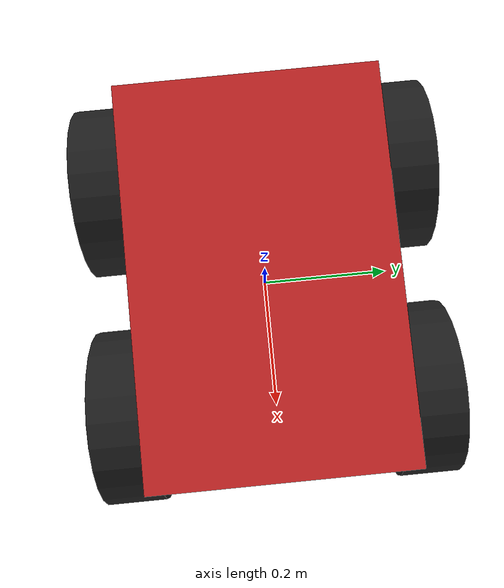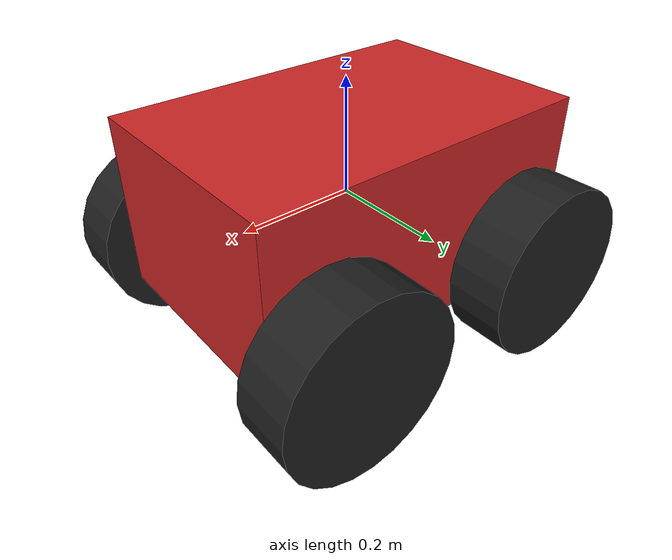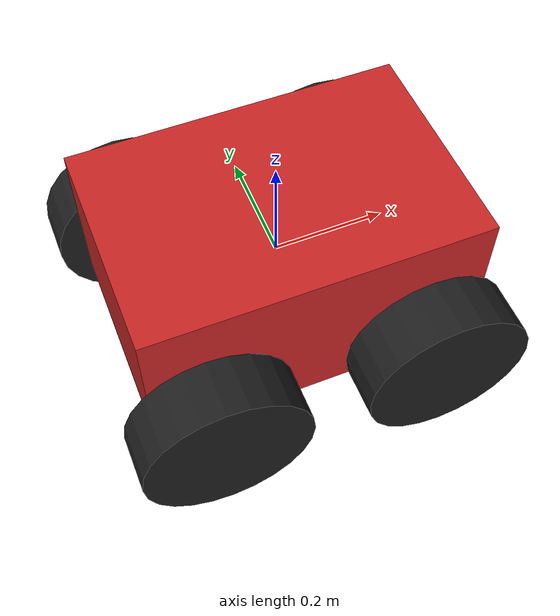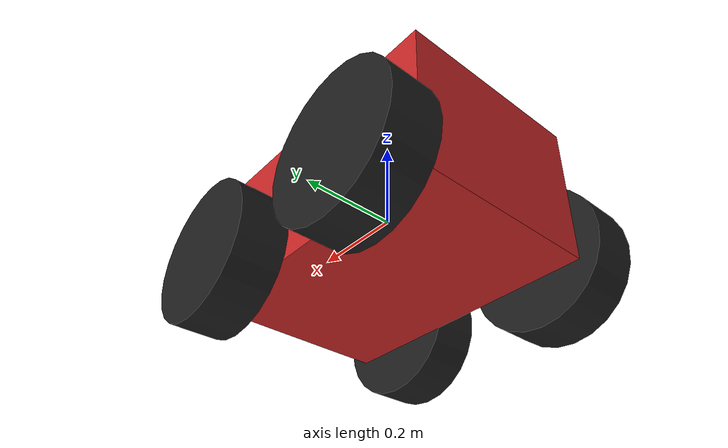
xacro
<robot xmlns:xacro="http://www.ros.org/wiki/xacro" name="example">
  <xacro:macro name="gazebo_material" params="ref color">
    <gazebo reference="${ref}">
      <material>Gazebo/${color}</material>
    </gazebo>
  </xacro:macro>

  <xacro:include filename="$(find vehicle_simulator)/urdf/head.xacro" />

  <xacro:property name="PI" value="3.1415926"/>
  <!--parames-base-->
  <xacro:property name="base_box_x" value="0.6"/>
  <xacro:property name="base_box_y" value="0.4"/>
  <xacro:property name="base_box_z" value="0.3"/>
  <xacro:property name="base_mass" value="4"/>

  <!--parames-wheels-->
  <xacro:property name="wheel_radius" value="0.15"/>
  <xacro:property name="wheel_length" value="0.1"/>
  <xacro:property name="wheel_mass" value="0.2"/>

  <xacro:property name="wheel_offset_x" value="0.2"/>
  <xacro:property name="wheel_offset_y" value="0.25"/>
  <xacro:property name="wheel_offset_z" value="-0.1"/>

  <link name="base_origin"></link>

  <link name="base_link">
    <visual>
      <origin xyz="0 0 0" rpy="0 0 0"/>
      <geometry>
        <box size="${base_box_x} ${base_box_y} ${base_box_z}"/>

      </geometry>
    </visual>

    <collision>
        <origin xyz="0 0 0" rpy="0 0 0"/>
        <geometry>
        <box size="${base_box_x} ${base_box_y} ${base_box_z}"/>

        </geometry>
     </collision>

    <xacro:Box_inertial_matrix m="${base_mass}" l="${base_box_x}" w="${base_box_y}" h="${base_box_z}"/>

  </link>

  <joint name="base_link_joint" type="fixed">
    <origin xyz="0.0 0 0.0" rpy="0 0 0"/>
    <parent link="base_origin"/>
    <child link="base_link"/>
  </joint>

  <!--macro of wheel-->
   <xacro:macro name="add_wheel" params="name *joint_pose">
    <link name="${name}_wheel">
      <visual>
        <origin xyz="0 0 0" rpy="${PI /2} 0 0"/>
        <geometry>
          <cylinder radius="${wheel_radius}" length="${wheel_length}"/>
        </geometry>
      </visual>

      <collision>
        <origin xyz="0 0 0" rpy="${PI /2} 0 0"/>
        <geometry>
          <cylinder radius="${wheel_radius}" length="${wheel_length}"/>
        </geometry>
      </collision>

      <xacro:cylinder_inertial_matrix m="${wheel_mass}" r="${wheel_radius}" h="${wheel_length}"/>
    </link>

    <joint name="${name}_joint" type="continuous">
      <xacro:insert_block name="joint_pose" />
      <parent link="base_link"/>
      <child link="${name}_wheel"/>
      <axis xyz="0 1 0" />
    </joint>

    <!-- f  link-->
    <gazebo reference="${name}_wheel">
      <selfCollide>false</selfCollide>
      <mu1>1.0</mu1>
      <mu2>0.5</mu2>
      <kp value="10000000.0" />
      <kd value="1.0" />
      <fdir1 value="1 0 0" />
    </gazebo>
    <transmission name="${name}_joint_trans">
      <type>transmission_interface/SimpleTransmission</type>
      <joint name="${name}_joint">
        <hardwareInterface>hardware_interface/VelocityJointInterface</hardwareInterface>
      </joint>
      <actuator name="${name}_actuator">
        <hardwareInterface>hardware_interface/VelocityJointInterface</hardwareInterface>
        <mechanicalReduction>1</mechanicalReduction>
      </actuator>
    </transmission>
  </xacro:macro>

  <xacro:property name="lfwheel_joint_x" value="${wheel_offset_x}"/>
  <xacro:property name="lfwheel_joint_y" value="${wheel_offset_y}"/>
  <xacro:property name="lfwheel_joint_r" value="0"/>

  <xacro:property name="lrwheel_joint_x" value="${-1 * wheel_offset_x}"/>
  <xacro:property name="lrwheel_joint_y" value="${wheel_offset_y}"/>
  <xacro:property name="lrwheel_joint_r" value="0"/>

  <xacro:property name="rfwheel_joint_x" value="${wheel_offset_x}"/>
  <xacro:property name="rfwheel_joint_y" value="${-1 * wheel_offset_y}"/>
  <xacro:property name="rfwheel_joint_r" value="0"/>

  <xacro:property name="rrwheel_joint_x" value="${-1 * wheel_offset_x}"/>
  <xacro:property name="rrwheel_joint_y" value="${-1 * wheel_offset_y}"/>
  <xacro:property name="rrwheel_joint_r" value="0"/>

  <xacro:add_wheel name="left_front">
    <origin xyz="${lfwheel_joint_x} ${lfwheel_joint_y} ${wheel_offset_z}" rpy="${lfwheel_joint_r} 0 0"/>
  </xacro:add_wheel>

  <xacro:add_wheel name="left_rear">
    <origin xyz="${lrwheel_joint_x} ${lrwheel_joint_y} ${wheel_offset_z}" rpy="${lrwheel_joint_r} 0 0"/>
  </xacro:add_wheel>

  <xacro:add_wheel name="right_front">
    <origin xyz="${rfwheel_joint_x} ${rfwheel_joint_y} ${wheel_offset_z}" rpy="${rfwheel_joint_r} 0 0"/>
  </xacro:add_wheel>

  <xacro:add_wheel name="right_rear">
    <origin xyz="${rrwheel_joint_x} ${rrwheel_joint_y} ${wheel_offset_z}" rpy="${rrwheel_joint_r} 0 0"/>
  </xacro:add_wheel>

  <xacro:gazebo_material ref="base_link"         color="Red" />
  <xacro:gazebo_material ref="lidar_holder"      color="Black" />
  <xacro:gazebo_material ref="left_front_wheel"  color="Black" />
  <xacro:gazebo_material ref="left_rear_wheel"   color="Black" />
  <xacro:gazebo_material ref="right_front_wheel" color="Black" />
  <xacro:gazebo_material ref="right_rear_wheel"  color="Black" />

</robot>

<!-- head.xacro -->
<robot name="inte" xmlns:xacro="http://wiki.ros.org/xacro">
    <!-- Macro for inertia matrix -->
    <xacro:macro name="sphere_inertial_matrix" params="m r">
        <inertial>
            <mass value="${m}" />
            <inertia ixx="${2*m*r*r/5}" ixy="0" ixz="0"
                iyy="${2*m*r*r/5}" iyz="0"
                izz="${2*m*r*r/5}" />
        </inertial>
    </xacro:macro>

    <xacro:macro name="cylinder_inertial_matrix" params="m r h">
        <inertial>
            <mass value="${m}" />
            <inertia ixx="${m*(3*r*r+h*h)/12}" ixy = "0" ixz = "0"
                iyy="${m*(3*r*r+h*h)/12}" iyz = "0"
                izz="${m*r*r/2}" />
        </inertial>
    </xacro:macro>

    <xacro:macro name="Box_inertial_matrix" params="m l w h">
       <inertial>
               <mass value="${m}" />
               <inertia ixx="${m*(h*h + l*l)/12}" ixy = "0" ixz = "0"
                   iyy="${m*(w*w + l*l)/12}" iyz= "0"
                   izz="${m*(w*w + h*h)/12}" />
       </inertial>
   </xacro:macro>
</robot>
